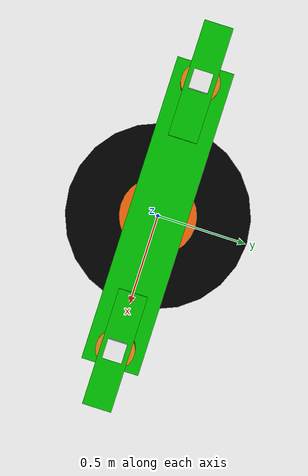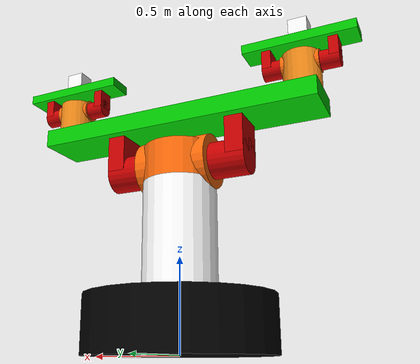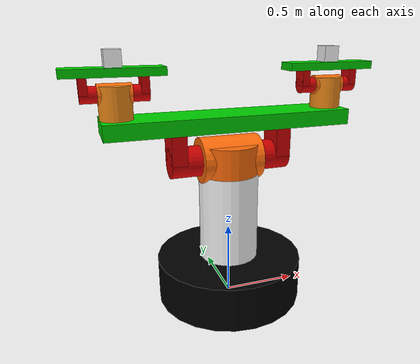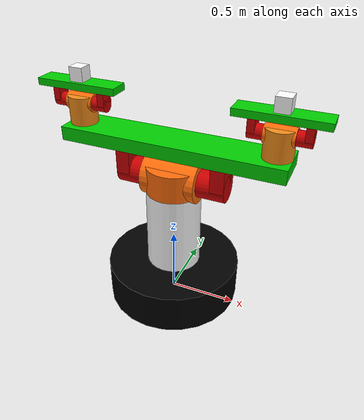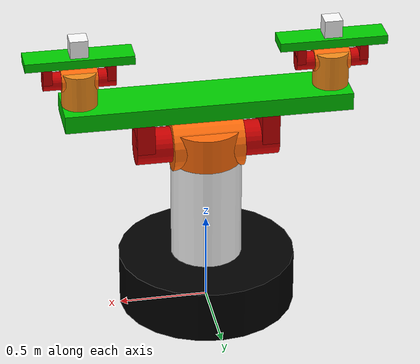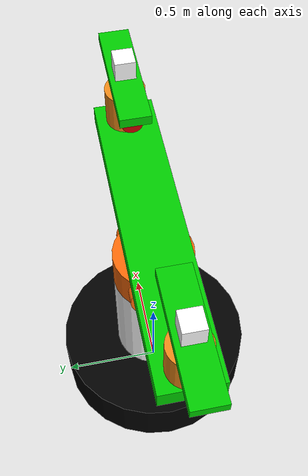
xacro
<?xml version="1.0"?>

<robot name="binocular" xmlns:xacro="http://www.ros.org/wiki/xacro">

  <xacro:property name="PI" value="3.1415926535897931"/>
  <!-- arbitrary value for mass -->
  <xacro:property name="mass" value="5" />

  <!-- Import all Gazebo-customization elements, including Gazebo colors-->
  <xacro:include filename="$(find binocular)/urdf/binocular.gazebo" />
  <!-- Import Rviz colors -->
  <xacro:include filename="$(find binocular)/urdf/materials.xacro" />

  <!-- link base parameters  -->
  <xacro:property name="base_height" value="0.3" />
  <xacro:property name="base_radius" value="0.5" />
  <xacro:property name="base_pillar_height" value="0.6" />
  <xacro:property name="base_pillar_radius" value="0.2" />

  <link name="world"/>

  <joint name="fixed" type="fixed">
    <parent link="world"/>
    <child link="link_base"/>
  </joint>

  <!-- Link Base -->
  <link name="link_base">
    <collision>
      <origin xyz="0 0 ${base_height/2}" rpy="0 0 0"/>
      <geometry>
		    <cylinder length="${base_height}" radius="${base_radius}"/>
      </geometry>
    </collision>
    <visual>
      <origin xyz="0 0 ${base_height/2}" rpy="0 0 0"/>
      <geometry>
        <cylinder length="${base_height}" radius="${base_radius}"/>
      </geometry>
      <material name="black"/>
 	  </visual>

    <collision>
      <origin xyz="0 0 ${base_height+base_pillar_height/2}" rpy="0 0 0"/>
      <geometry>
        <cylinder length="${base_pillar_height}" radius="${base_pillar_radius}"/>
      </geometry>
    </collision>
    <visual>
      <origin xyz="0 0 ${base_height+base_pillar_height/2}" rpy="0 0 0"/>
      <geometry>
        <cylinder length="${base_pillar_height}" radius="${base_pillar_radius}"/>
      </geometry>
      <material name="white"/>
    </visual>

	  <inertial>
      <origin xyz="0 0 ${base_height/2}" rpy="0 0 0"/>
      <mass value="${mass}"/>
      <inertia
        ixx="${mass / 12.0 * (3.0*base_radius*base_radius + base_height*base_height)}" ixy="0.0" ixz="0.0"
        iyy="${mass / 12.0 * (3.0*base_radius*base_radius + base_height*base_height)}" iyz="0.0"
        izz="${mass / 2.0 * base_radius*base_radius}"/>
    </inertial>
  </link>

  <!-- Neck pan -->
  <joint name="theta1" type="revolute">
    <parent link="link_base"/>
    <child link="link_servo0"/>
    <!-- Tw0 parameters -->
    <origin xyz="0 0 ${base_height+base_pillar_height}" rpy="0 0 0"/>
    <axis xyz="0 0 1"/>
    <limit effort="1000.0" lower="${-PI/2.0}" upper="${PI/2}" velocity="5"/>
    <dynamics damping="0.5"/>
  </joint>

  <!-- link servo0 parameters -->
  <!--d1 can be set to !servo0_height/2!-->
  <xacro:property name="servo0_height" value="0.2"/>
  <xacro:property name="servo0_radius" value="0.2"/>
  <xacro:property name="d1" value="${servo0_height/2}"/>
  <xacro:property name="r1" value="0"/>
  <xacro:property name="servo1_length" value="${2*servo0_radius}"/>
  <xacro:property name="servo1_radius" value="0.15"/>

  <!-- Link servo0 -->
  <link name="link_servo0">
    <collision>
      <origin xyz="0 0 ${servo0_height/2}" rpy="0 0 0"/>
      <geometry>
        <cylinder length="${base_pillar_height}" radius="${base_pillar_radius}"/>
      </geometry>
    </collision>
    <visual>
      <origin xyz="0 0 ${servo0_height/2}" rpy="0 0 0"/>
      <geometry>
        <cylinder length="${servo0_height}" radius="${servo0_radius}"/>
      </geometry>
      <material name="orange"/>
    </visual>
    <collision>
      <origin xyz="0 ${r1} ${servo0_height/2}" rpy="0 ${PI/2.0} 0"/>
      <geometry>
        <cylinder length="${2*servo0_height}" radius="${servo1_radius}"/>
      </geometry>
    </collision>
    <visual>
      <origin xyz="0 ${r1} ${servo0_height/2}" rpy="0 ${PI/2.0} 0"/>
      <geometry>
        <cylinder length="${2*servo0_height}" radius="${servo1_radius}"/>
      </geometry>
      <material name="orange"/>
    </visual>

    <inertial>
      <origin xyz="0 0 ${servo0_height/2}" rpy="0 0 0"/>
      <mass value="${mass/5}"/>
      <inertia
        ixx="0.15" ixy="0" ixz="0"
        iyy="0.1" iyz="0"
        izz="0.2" />
    </inertial>
  </link>

  <!-- link servo1 parameters -->
  <xacro:property name="servo1_shaft_radius" value="0.1" />
  <xacro:property name="servo1_shaft_length" value="0.2" />
  <xacro:property name="servo1_support_height" value="0.2" />
  <xacro:property name="servo1_support_width" value="0.1" />
  <xacro:property name="baselineboard_height" value="0.1"/>
  <xacro:property name="baselineboard_length" value="1.6"/>
  <xacro:property name="baselineboard_width" value="0.3"/>

  <!-- Neck tilt -->
  <joint name="theta2" type="revolute">
    <parent link="link_servo0"/>
    <child link="link_servo1_baselineboard"/>
    <origin xyz="0 ${r1} ${servo0_height/2}" rpy="${-PI/2.0} -0 ${-PI/2.0}"/>
    <axis xyz="0 0 1"/>
    <limit effort="1000.0" lower="0.0" upper="0.0" velocity="0.0"/>
    <dynamics damping="0.5"/>
  </joint>

  <link name="link_servo1_baselineboard">
    <collision>
      <origin xyz="0 0 ${servo0_radius+servo1_shaft_length/2}" rpy="0 0 0"/>
      <geometry>
        <cylinder length="${servo1_shaft_length}" radius="${servo1_shaft_radius}"/>
      </geometry>
    </collision>
    <visual>
       <origin xyz="0 0 ${servo0_radius+servo1_shaft_length/2}" rpy="0 0 0"/>
      <geometry>
        <cylinder length="${servo1_shaft_length}" radius="${servo1_shaft_radius}"/>
      </geometry>
      <material name="red"/>
    </visual>

    <collision>
      <origin xyz="0 0 ${-servo0_radius-servo1_shaft_length/2}" rpy="0 0 0"/>
      <geometry>
        <cylinder length="${servo1_shaft_length}" radius="${servo1_shaft_radius}"/>
      </geometry>
    </collision>
    <visual>
       <origin xyz="0 0 ${-servo0_radius-servo1_shaft_length/2}" rpy="0 0 0"/>
      <geometry>
        <cylinder length="${servo1_shaft_length}" radius="${servo1_shaft_radius}"/>
      </geometry>
      <material name="red"/>
    </visual>

    <collision>
      <origin xyz="0 ${-servo1_support_height/2} ${servo0_radius+servo1_shaft_length-servo1_support_width/2}" rpy="0 0 0"/>
      <geometry>
        <box size="${2*servo1_shaft_radius} ${servo1_support_height} ${servo1_support_width}"/>
      </geometry>
    </collision>
    <visual>
      <origin xyz="0 ${-servo1_support_height/2} ${servo0_radius+servo1_shaft_length-servo1_support_width/2}" rpy="0 0 0"/>
      <geometry>
        <box size="${2*servo1_shaft_radius} ${servo1_support_height} ${servo1_support_width}"/>
      </geometry>
      <material name="red"/>
    </visual>

    <collision>
      <origin xyz="0 ${-servo1_support_height/2} ${-servo0_radius-servo1_shaft_length+servo1_support_width/2}" rpy="0 0 0"/>
      <geometry>
        <box size="${2*servo1_shaft_radius} ${servo1_support_height} ${servo1_support_width}"/>
      </geometry>
    </collision>
    <visual>
      <origin xyz="0 ${-servo1_support_height/2} ${-servo0_radius-servo1_shaft_length+servo1_support_width/2}" rpy="0 0 0"/>
      <geometry>
        <box size="${2*servo1_shaft_radius} ${servo1_support_height} ${servo1_support_width}"/>
      </geometry>
      <material name="red"/>
    </visual>

    <collision>
      <origin xyz="0 ${-servo1_support_height-baselineboard_height/2} 0"/>
      <geometry>
        <box size="${baselineboard_width} ${baselineboard_height} ${baselineboard_length}"/>
      </geometry>
    </collision>
    <visual>
      <origin xyz="0 ${-servo1_support_height-baselineboard_height/2} 0"/>
      <geometry>
        <box size="${baselineboard_width} ${baselineboard_height} ${baselineboard_length}"/>
      </geometry>
      <material name="green"/>
    </visual>

    <inertial>
      <origin xyz="0 0 0" rpy="0 0 0"/>
      <mass value="${mass/3}"/>
      <inertia
        ixx="0.10" ixy="0" ixz="0"
        iyy="-0.1" iyz="0"
        izz="0.2" />
    </inertial>
  </link>

  <!-- link servo2 parameters -->
  <xacro:property name="servo2_offset" value="0.05"/>
  <xacro:property name="servo2_height" value="0.2" />
  <xacro:property name="servo2_radius" value="0.1" />
  <xacro:property name="servo2_bar_length" value="0"/>
  <xacro:property name="servo2_bar_height" value="${2*servo2_offset}"/>
  <xacro:property name="d2" value="${baselineboard_length/2-servo2_radius}" />
  <xacro:property name="r2" value="0" />
  <xacro:property name="d3" value="${servo1_support_height+baselineboard_height+servo2_height-servo2_offset}"/>
  <xacro:property name="r3" value="${servo2_bar_length}"/>

  <!-- left eye pan -->
  <joint name="theta3" type="revolute">
    <parent link="link_servo1_baselineboard"/>
    <child link="link_servo2"/>
    <origin xyz="${r2} 0 ${-d2}" rpy="${PI/2.0} ${PI} 0"/>
    <axis xyz="0 0 1"/>
    <limit effort="1000.0" lower="${-PI/2.0}" upper="0" velocity="3"/>
    <dynamics damping="0.5"/>
  </joint>

  <link name="link_servo2">
    <collision>
      <origin xyz="${r2} 0 ${d3+servo2_offset-servo2_height/2}" rpy="0 0 0"/>
      <geometry>
        <cylinder length="${servo2_height}" radius="${servo2_radius}"/>
      </geometry>
    </collision>
    <visual>
      <origin xyz="${r2} 0 ${d3+servo2_offset-servo2_height/2}" rpy="0 0 0"/>
      <geometry>
        <cylinder length="${servo2_height}" radius="${servo2_radius}"/>
      </geometry>
    </visual>
    <collision>
      <origin xyz="${r3} 0 ${d3}" rpy="${-PI/2.0} ${-PI/2.0} 0"/>
      <geometry>
        <cylinder length="${2*servo2_radius}" radius="${servo2_radius/1.6}"/>
      </geometry>
    </collision>
    <visual>
      <origin xyz="${r3} 0 ${d3}" rpy="${-PI/2.0} ${-PI/2.0} 0"/>
      <geometry>
        <cylinder length="${2*servo2_radius}" radius="${servo2_radius/1.6}"/>
      </geometry>
      <material name="orange"/>
    </visual>

    <inertial>
      <origin xyz="0 0 ${d3+servo2_offset-servo2_height/2}" rpy="0 0 0"/>
      <mass value="${mass/5}"/>
      <inertia
        ixx="0.01" ixy="0.0" ixz="0.0"
        iyy="0.01" iyz="0.0"
        izz="0.01"/>
    </inertial>
  </link>

  <!--
    Link servo3 parameters
  -->
  <xacro:property name="servo3_shaft_radius" value="0.05" />
  <xacro:property name="servo3_shaft_length" value="0.1" />
  <xacro:property name="servo3_support_height" value="0.1" />
  <xacro:property name="servo3_support_width" value="0.05" />
  <xacro:property name="camera_board_height" value="0.05"/>
  <xacro:property name="camera_board_length" value="0.6"/>
  <xacro:property name="camera_board_width" value="0.15"/>

  <!-- left eye tilt -->
  <joint name="theta4" type="revolute">
    <parent link="link_servo2"/>
    <child link="link_servo3"/>
    <origin xyz="${r3} 0 ${d3}" rpy="${PI/2.0} ${PI} 0"/>
    <axis xyz="0 0 1"/>
    <limit effort="1000.0" lower="${-PI/2.0}" upper="${PI/2.0}" velocity="3"/>
    <dynamics damping="0.5"/>
  </joint>

  <link name="link_servo3">
    <collision>
      <origin xyz="0 0 ${servo2_radius+servo3_shaft_length/2}" rpy="0 0 0"/>
      <geometry>
        <cylinder length="${servo3_shaft_length}" radius="${servo3_shaft_radius}"/>
      </geometry>
    </collision>
    <visual>
       <origin xyz="0 0 ${servo2_radius+servo3_shaft_length/2}" rpy="0 0 0"/>
      <geometry>
        <cylinder length="${servo3_shaft_length}" radius="${servo3_shaft_radius}"/>
      </geometry>
      <material name="red"/>
    </visual>

    <collision>
      <origin xyz="0 0 ${-servo2_radius-servo3_shaft_length/2}" rpy="0 0 0"/>
      <geometry>
        <cylinder length="${servo3_shaft_length}" radius="${servo3_shaft_radius}"/>
      </geometry>
    </collision>
    <visual>
       <origin xyz="0 0 ${-servo2_radius-servo3_shaft_length/2}" rpy="0 0 0"/>
      <geometry>
        <cylinder length="${servo3_shaft_length}" radius="${servo3_shaft_radius}"/>
      </geometry>
      <material name="red"/>
    </visual>

    <collision>
      <origin xyz="0 ${-servo3_support_height/2} ${servo2_radius+servo3_shaft_length-servo3_support_width/2}" rpy="0 0 0"/>
      <geometry>
        <box size="${2*servo3_shaft_radius} ${servo3_support_height} ${servo3_support_width}"/>
      </geometry>
    </collision>
    <visual>
      <origin xyz="0 ${-servo3_support_height/2} ${servo2_radius+servo3_shaft_length-servo3_support_width/2}" rpy="0 0 0"/>
      <geometry>
        <box size="${2*servo3_shaft_radius} ${servo3_support_height} ${servo3_support_width}"/>
      </geometry>
      <material name="red"/>
    </visual>

    <collision>
      <origin xyz="0 ${-servo3_support_height/2} ${-servo2_radius-servo3_shaft_length+servo3_support_width/2}" rpy="0 0 0"/>
      <geometry>
        <box size="${2*servo3_shaft_radius} ${servo3_support_height} ${servo3_support_width}"/>
      </geometry>
    </collision>
    <visual>
      <origin xyz="0 ${-servo3_support_height/2} ${-servo2_radius-servo3_shaft_length+servo3_support_width/2}" rpy="0 0 0"/>
      <geometry>
        <box size="${2*servo3_shaft_radius} ${servo3_support_height} ${servo3_support_width}"/>
      </geometry>
      <material name="red"/>
    </visual>

    <collision>
      <origin xyz="0 ${-servo3_support_height-camera_board_height/2} 0"/>
      <geometry>
        <box size="${camera_board_width} ${camera_board_height} ${camera_board_length}"/>
      </geometry>
    </collision>
    <visual>
      <origin xyz="0 ${-servo3_support_height-camera_board_height/2} 0"/>
      <geometry>
        <box size="${camera_board_width} ${camera_board_height} ${camera_board_length}"/>
      </geometry>
      <material name="green"/>
    </visual>

    <inertial>
      <origin xyz="0 0 0" rpy="0 0 0"/>
      <mass value="${mass/10}"/>
      <inertia
        ixx="0.010" ixy="0" ixz="0"
        iyy="-0.01" iyz="0"
        izz="0.02" />
    </inertial>
  </link>

  <!--
    Link servo4 share parameters with link servo2
  -->
  <xacro:property name="r5" value="${r2}" />
  <xacro:property name="d5" value="${d2}" />
  <!--
    Link servo5 share parameters with link servo3
  -->
  <xacro:property name="r6" value="${r3}" />
  <xacro:property name="d6" value="${d3}" />

  <!-- right eye pan -->
  <joint name="theta6" type="revolute">
    <parent link="link_servo1_baselineboard"/>
    <child link="link_servo4"/>
    <origin xyz="${r5} 0 ${d5}" rpy="${PI/2.0} ${PI} 0"/>
    <axis xyz="0 0 1"/>
    <limit effort="1000.0" lower="0.0" upper="${PI/2.0}" velocity="3"/>
    <dynamics damping="0.5"/>
  </joint>

  <link name="link_servo4">
    <collision>
      <origin xyz="${r2} 0 ${d3+servo2_offset-servo2_height/2}" rpy="0 0 0"/>
      <geometry>
        <cylinder length="${servo2_height}" radius="${servo2_radius}"/>
      </geometry>
    </collision>
    <visual>
      <origin xyz="${r2} 0 ${d3+servo2_offset-servo2_height/2}" rpy="0 0 0"/>
      <geometry>
        <cylinder length="${servo2_height}" radius="${servo2_radius}"/>
      </geometry>
    </visual>
    <collision>
      <origin xyz="${r6} 0 ${d3}" rpy="${-PI/2.0} ${-PI/2.0} 0"/>
      <geometry>
        <cylinder length="${2*servo2_radius}" radius="${servo2_radius/1.6}"/>
      </geometry>
    </collision>
    <visual>
      <origin xyz="${r6} 0 ${d3}" rpy="${-PI/2.0} ${-PI/2.0} 0"/>
      <geometry>
        <cylinder length="${2*servo2_radius}" radius="${servo2_radius/1.6}"/>
      </geometry>
      <material name="orange"/>
    </visual>

    <inertial>
      <origin xyz="0 0 ${d3+servo2_offset-servo2_height/2}" rpy="0 0 0"/>
      <mass value="${mass/5}"/>
      <inertia
        ixx="0.01" ixy="0.0" ixz="0.0"
        iyy="0.01" iyz="0.0"
        izz="0.01"/>
    </inertial>
  </link>

  <!-- right eye tilt -->
  <joint name="theta7" type="revolute">
    <parent link="link_servo4"/>
    <child link="link_servo5"/>
    <origin xyz="${r3} 0 ${d3}" rpy="${PI/2.0} ${PI} 0"/>
    <axis xyz="0 0 1"/>
    <limit effort="1000.0" lower="${-PI/2.0}" upper="${PI/2.0}" velocity="3"/>
    <dynamics damping="0.5"/>
  </joint>

  <link name="link_servo5">
    <collision>
      <origin xyz="0 0 ${servo2_radius+servo3_shaft_length/2}" rpy="0 0 0"/>
      <geometry>
        <cylinder length="${servo3_shaft_length}" radius="${servo3_shaft_radius}"/>
      </geometry>
    </collision>
    <visual>
       <origin xyz="0 0 ${servo2_radius+servo3_shaft_length/2}" rpy="0 0 0"/>
      <geometry>
        <cylinder length="${servo3_shaft_length}" radius="${servo3_shaft_radius}"/>
      </geometry>
      <material name="red"/>
    </visual>

    <collision>
      <origin xyz="0 0 ${-servo2_radius-servo3_shaft_length/2}" rpy="0 0 0"/>
      <geometry>
        <cylinder length="${servo3_shaft_length}" radius="${servo3_shaft_radius}"/>
      </geometry>
    </collision>
    <visual>
       <origin xyz="0 0 ${-servo2_radius-servo3_shaft_length/2}" rpy="0 0 0"/>
      <geometry>
        <cylinder length="${servo3_shaft_length}" radius="${servo3_shaft_radius}"/>
      </geometry>
      <material name="red"/>
    </visual>

    <collision>
      <origin xyz="0 ${-servo3_support_height/2} ${servo2_radius+servo3_shaft_length-servo3_support_width/2}" rpy="0 0 0"/>
      <geometry>
        <box size="${2*servo3_shaft_radius} ${servo3_support_height} ${servo3_support_width}"/>
      </geometry>
    </collision>
    <visual>
      <origin xyz="0 ${-servo3_support_height/2} ${servo2_radius+servo3_shaft_length-servo3_support_width/2}" rpy="0 0 0"/>
      <geometry>
        <box size="${2*servo3_shaft_radius} ${servo3_support_height} ${servo3_support_width}"/>
      </geometry>
      <material name="red"/>
    </visual>

    <collision>
      <origin xyz="0 ${-servo3_support_height/2} ${-servo2_radius-servo3_shaft_length+servo3_support_width/2}" rpy="0 0 0"/>
      <geometry>
        <box size="${2*servo3_shaft_radius} ${servo3_support_height} ${servo3_support_width}"/>
      </geometry>
    </collision>
    <visual>
      <origin xyz="0 ${-servo3_support_height/2} ${-servo2_radius-servo3_shaft_length+servo3_support_width/2}" rpy="0 0 0"/>
      <geometry>
        <box size="${2*servo3_shaft_radius} ${servo3_support_height} ${servo3_support_width}"/>
      </geometry>
      <material name="red"/>
    </visual>

    <collision>
      <origin xyz="0 ${-servo3_support_height-camera_board_height/2} 0"/>
      <geometry>
        <box size="${camera_board_width} ${camera_board_height} ${camera_board_length}"/>
      </geometry>
    </collision>
    <visual>
      <origin xyz="0 ${-servo3_support_height-camera_board_height/2} 0"/>
      <geometry>
        <box size="${camera_board_width} ${camera_board_height} ${camera_board_length}"/>
      </geometry>
      <material name="green"/>
    </visual>

    <inertial>
      <origin xyz="0 0 0" rpy="0 0 0"/>
      <mass value="${mass/10}"/>
      <inertia
        ixx="0.010" ixy="0" ixz="0"
        iyy="-0.01" iyz="0"
        izz="0.02" />
    </inertial>
  </link>

  <!--
      Link left camera parameters
   -->
  <xacro:property name="camera_size" value="0.1"/>
  <xacro:property name="camera_left_x_shift" value="0" />
  <xacro:property name="camera_left_y_shift" value="${-(servo3_support_height+camera_board_height+camera_size/2)}" />
  <xacro:property name="camera_left_z_shift" value="0" />
  <xacro:property name="camera_left_roll" value="${PI/2.0}" />
  <xacro:property name="camera_left_pitch" value="${PI}" />
  <xacro:property name="camera_left_yaw" value="0" />

  <joint name="left_camera_joint" type="fixed">
    <origin xyz="${camera_left_x_shift} ${camera_left_y_shift} ${camera_left_z_shift}" rpy="${camera_left_roll} ${camera_left_pitch} ${camera_left_yaw}" />
    <parent link= "link_servo3"/>
    <child link="left_camera"/>
    <axis xyz="0 1 0" />
  </joint>

  <!-- Left Camera -->
  <link name="left_camera">
    <collision>
      <origin xyz="0 0 0" rpy="0 0 0"/>
      <geometry>
        <box size="${camera_size} ${camera_size} ${camera_size}"/>
      </geometry>
    </collision>

    <visual>
      <origin xyz="0 0 0" rpy="0 0 0"/>
      <geometry>
        <box size="${camera_size} ${camera_size} ${camera_size}"/>
      </geometry>
      <material name="white"/>
    </visual>

    <inertial>
      <mass value="1e-5" />
      <origin xyz="0 0 0" rpy="0 0 0"/>
      <inertia ixx="1e-6" ixy="0" ixz="0" iyy="1e-6" iyz="0" izz="1e-6" />
    </inertial>
  </link>

  <joint name="right_camera_joint" type="fixed">
    <origin xyz="${camera_left_x_shift} ${camera_left_y_shift} ${camera_left_z_shift}" rpy="${camera_left_roll} ${camera_left_pitch} ${camera_left_yaw}" />
    <parent link= "link_servo5"/>
    <child link="right_camera"/>
    <axis xyz="0 1 0" />
  </joint>

  <!-- Left Camera -->
  <link name="right_camera">
    <collision>
      <origin xyz="0 0 0" rpy="0 0 0"/>
      <geometry>
        <box size="${camera_size} ${camera_size} ${camera_size}"/>
      </geometry>
    </collision>

    <visual>
      <origin xyz="0 0 0" rpy="0 0 0"/>
      <geometry>
        <box size="${camera_size} ${camera_size} ${camera_size}"/>
      </geometry>
      <material name="white"/>
    </visual>

    <inertial>
      <mass value="1e-5" />
      <origin xyz="0 0 0" rpy="0 0 0"/>
      <inertia ixx="1e-6" ixy="0" ixz="0" iyy="1e-6" iyz="0" izz="1e-6" />
    </inertial>
  </link>

  <transmission name="tran01">
    <type>transmission_interface/SimpleTransmission</type>
    <joint name="theta1">
      <hardwareInterface>hardware_interface/EffortJointInterface</hardwareInterface>
    </joint>
    <actuator name="motor0">
      <hardwareInterface>hardware_interface/EffortJointInterface</hardwareInterface>
      <mechanicalReduction>1</mechanicalReduction>
    </actuator>
  </transmission>

  <transmission name="tran12">
    <type>transmission_interface/SimpleTransmission</type>
    <joint name="theta2">
      <hardwareInterface>hardware_interface/EffortJointInterface</hardwareInterface>
    </joint>
    <actuator name="motor1">
      <hardwareInterface>hardware_interface/EffortJointInterface</hardwareInterface>
      <mechanicalReduction>1</mechanicalReduction>
    </actuator>
  </transmission>

  <transmission name="tran23">
    <type>transmission_interface/SimpleTransmission</type>
    <joint name="theta3">
      <hardwareInterface>hardware_interface/EffortJointInterface</hardwareInterface>
    </joint>
    <actuator name="motor2">
      <hardwareInterface>hardware_interface/EffortJointInterface</hardwareInterface>
      <mechanicalReduction>1</mechanicalReduction>
    </actuator>
  </transmission>

  <transmission name="tran3_l">
    <type>transmission_interface/SimpleTransmission</type>
    <joint name="theta4">
      <hardwareInterface>hardware_interface/EffortJointInterface</hardwareInterface>
    </joint>
    <actuator name="motor3">
      <hardwareInterface>hardware_interface/EffortJointInterface</hardwareInterface>
      <mechanicalReduction>1</mechanicalReduction>
    </actuator>
  </transmission>

  <transmission name="tran56">
    <type>transmission_interface/SimpleTransmission</type>
    <joint name="theta6">
      <hardwareInterface>hardware_interface/EffortJointInterface</hardwareInterface>
    </joint>
    <actuator name="motor5">
      <hardwareInterface>hardware_interface/EffortJointInterface</hardwareInterface>
      <mechanicalReduction>1</mechanicalReduction>
    </actuator>
  </transmission>

  <transmission name="tran6_r">
    <type>transmission_interface/SimpleTransmission</type>
    <joint name="theta7">
      <hardwareInterface>hardware_interface/EffortJointInterface</hardwareInterface>
    </joint>
    <actuator name="motor6">
      <hardwareInterface>hardware_interface/EffortJointInterface</hardwareInterface>
      <mechanicalReduction>1</mechanicalReduction>
    </actuator>
  </transmission>

</robot>

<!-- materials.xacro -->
<robot>

  <material name="black">
    <color rgba="0.0 0.0 0.0 1.0"/>
  </material>

  <material name="blue">
    <color rgba="0.0 0.0 0.8 1.0"/>
  </material>

  <material name="green">
    <color rgba="0.0 0.8 0.0 1.0"/>
  </material>

  <material name="grey">
    <color rgba="0.2 0.2 0.2 0.5"/>
  </material>

  <material name="orange">
    <color rgba="${255/255} ${108/255} ${10/255} 1.0"/>
  </material>

  <material name="brown">
    <color rgba="${222/255} ${207/255} ${195/255} 1.0"/>
  </material>

  <material name="red">
    <color rgba="0.8 0.0 0.0 1.0"/>
  </material>

  <material name="white">
    <color rgba="1.0 1.0 1.0 1.0"/>
  </material>

</robot>
